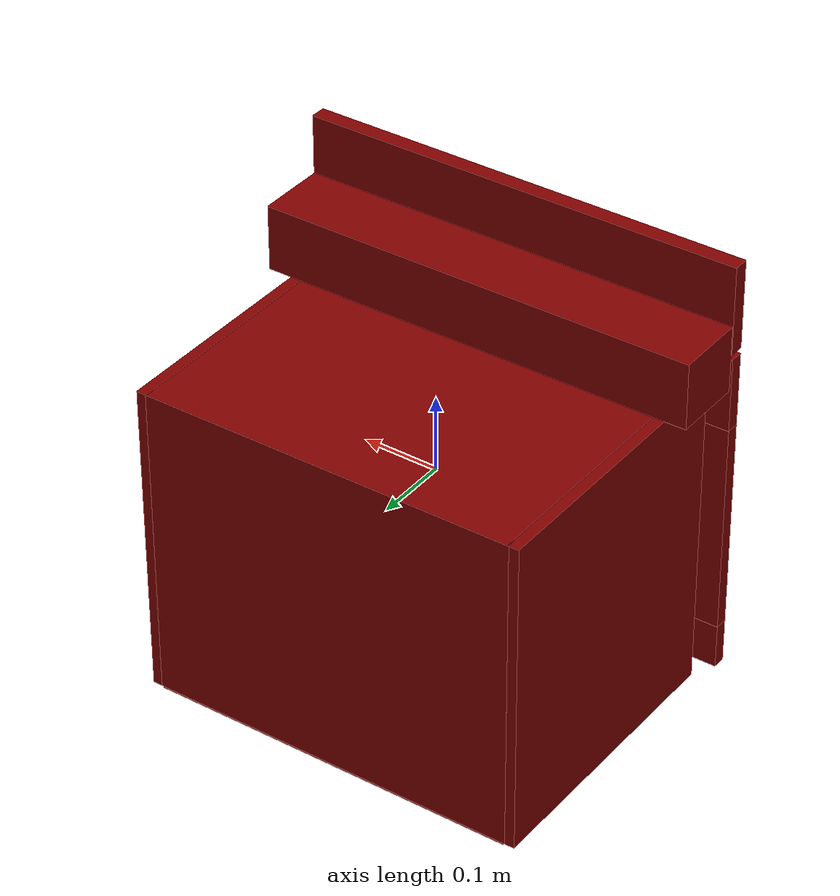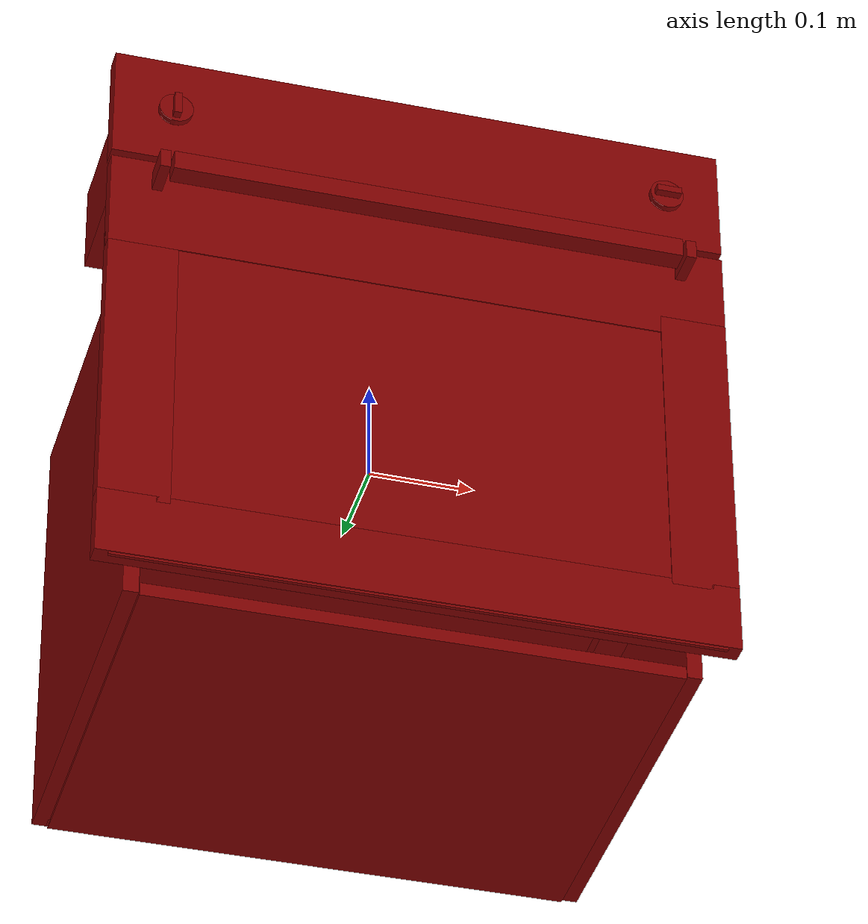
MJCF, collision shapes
<?xml version='1.0' encoding='UTF-8'?>
<mujoco model="model">
  <option timestep="0.002" gravity="0.0 0.0 -9.81"/>
  <compiler angle="radian"/>
  <asset>
    <mesh file="visuals/door.obj" name="door_vis"/>
    <mesh file="visuals/door_Clear.obj" name="door_Clear_vis"/>
    <mesh file="visuals/knob_temp.obj" name="knob_temp_vis"/>
    <mesh file="visuals/knob_time.obj" name="knob_time_vis"/>
    <mesh file="visuals/Body001.obj" name="Body001_vis"/>
    <mesh file="visuals/rack0.obj" name="rack0_vis"/>
    <mesh file="visuals/rack1.obj" name="rack1_vis"/>
    <texture file="visuals/T_BC001.png" name="Body001_material" type="2d"/>
    <material name="Body001_material" rgba="1 1 1 1.0" texture="Body001_material" shininess="2" specular="2"/>
    <texture file="visuals/T_BC001.png" name="door_material" type="2d"/>
    <material name="door_material" rgba="1 1 1 1.0" texture="door_material" shininess="2" specular="2"/>
    <texture file="visuals/T_BC001.png" name="door_Clear_material" type="2d"/>
    <material name="door_Clear_material" rgba="1 1 1 0.75" texture="door_Clear_material" shininess="0.5" specular="0.3103448502657381"/>
    <texture file="visuals/T_BC001.png" name="knob_temp_material" type="2d"/>
    <material name="knob_temp_material" rgba="1 1 1 1.0" texture="knob_temp_material" shininess="2" specular="2"/>
    <texture file="visuals/T_BC001.png" name="knob_time_material" type="2d"/>
    <material name="knob_time_material" rgba="1 1 1 1.0" texture="knob_time_material" shininess="2" specular="2"/>
    <texture file="visuals/T_BC001.png" name="rack0_material" type="2d"/>
    <material name="rack0_material" rgba="1 1 1 1.0" texture="rack0_material" shininess="10" specular="10"/>
    <texture file="visuals/T_BC001.png" name="rack1_material" type="2d"/>
    <material name="rack1_material" rgba="1 1 1 1.0" texture="rack1_material" shininess="10" specular="10"/>
  </asset>
  <default>
    <default class="visual">
      <geom conaffinity="0" contype="0" group="1" type="mesh"/>
    </default>
    <default class="collision">
      <geom group="0" rgba="0.5 0 0 0.5"/>
    </default>
    <default class="spawn">
      <geom group="0" rgba="1 1 1 0.5" contype="0" conaffinity="0"/>
      <site group="0" rgba="1 1 1 0.5"/>
    </default>
    <default class="region">
      <geom group="1" conaffinity="0" contype="0" rgba="0 1 0 0"/>
    </default>
  </default>
  <worldbody>
    <body>
      <body name="object">
        <geom mesh="Body001_vis" type="mesh" solimp="0.998 0.998 0.001" solref="0.001 1" friction="0.95 0.3 0.1" class="visual" material="Body001_material"/>
        <geom class="collision" type="box" pos="-0.2557266056537628 0.029321052134037018 -0.08142778277397156" size="0.007219076156616211 0.19212980568408966 0.2130533903837204" quat="1.0 0.0 0.0 0.0"/>
        <geom class="collision" type="box" pos="-6.509595550596714e-06 -0.1163046732544899 0.17706026136875153" size="0.2923739552497864 0.04649493098258972 0.043837908655405045" quat="1.0 0.0 0.0 0.0"/>
        <geom class="collision" type="box" pos="-2.9103830456733704e-11 -0.17321911454200745 0.24082490801811218" size="0.2932053804397583 0.010303128510713577 0.05880128592252731" quat="1.0 0.0 0.0 0.0"/>
        <geom class="collision" type="box" pos="0.2545583248138428 0.029321052134037018 -0.08142778277397156" size="0.007219076156616211 0.19212980568408966 0.2130533903837204" quat="1.0 0.0 0.0 0.0"/>
        <geom class="collision" type="box" pos="-0.0002587692579254508 0.2155100405216217 -0.08142778277397156" size="0.2494407445192337 0.005964251700788736 0.2130533903837204" quat="1.0 0.0 0.0 0.0"/>
        <geom class="collision" type="box" pos="-0.0005369999562390149 0.029321052134037018 -0.29008376598358154" size="0.24735546112060547 0.19212980568408966 0.006446285638958216" quat="1.0 0.0 0.0 0.0"/>
        <geom class="collision" type="box" pos="-0.0005370043218135834 0.029321052134037018 0.12525540590286255" size="0.24735546112060547 0.19212980568408966 0.006446285638958216" quat="1.0 0.0 0.0 0.0"/>
        <geom class="collision" type="box" pos="-0.23759418725967407 0.018307354301214218 0.011513151228427887" size="0.017211025580763817 0.1721840351819992 0.007144071627408266" quat="1.0 0.0 0.0 0.0"/>
        <geom class="collision" type="box" pos="0.2374390959739685 0.018307354301214218 0.011513151228427887" size="0.017211025580763817 0.1721840351819992 0.007144071627408266" quat="1.0 0.0 0.0 0.0"/>
        <geom class="collision" type="box" pos="0.2374390959739685 0.018307354301214218 -0.1430685669183731" size="0.017211025580763817 0.1721840351819992 0.007144071627408266" quat="1.0 0.0 0.0 0.0"/>
        <geom class="collision" type="box" pos="-0.23759418725967407 0.018307354301214218 -0.1430685669183731" size="0.017211025580763817 0.1721840351819992 0.007144071627408266" quat="1.0 0.0 0.0 0.0"/>
        <body name="door">
          <joint axis="1.0 0.0 0.0" pos="-1.990207238122821e-05 -0.18246791558340192 -0.27253665030002594" limited="true" name="door_joint" range="0.0 1.15" type="hinge" damping="1" frictionloss="1" armature="1" stiffness="2"/>
          <geom mesh="door_vis" type="mesh" solimp="0.998 0.998 0.001" solref="0.001 1" friction="0.95 0.3 0.1" class="visual" material="door_material"/>
          <geom class="collision" type="box" pos="-8.794665336608887e-05 -0.21169334650039673 0.14926202595233917" size="0.009907918982207775 0.009907918982207775 0.24201254546642303" quat="0.4999999701976776 0.5 0.5 0.5" name="door_handle_main"/>
          <geom class="collision" type="box" pos="-1.990207238122821e-05 -0.17772334814071655 -0.05382537841796875" size="0.23479610681533813 0.0013434074353426695 0.13202042877674103" quat="1.0 0.0 0.0 0.0"/>
          <geom class="collision" type="box" pos="-1.990207238122821e-05 -0.18086303770542145 -0.05382537841796875" size="0.2804950177669525 0.0016048778779804707 0.2187112718820572" quat="1.0 0.0 0.0 0.0" name="door_main"/>
          <geom class="collision" type="box" pos="-1.2456439435482025e-08 -0.17467117309570312 -0.23719945549964905" size="0.2932053804397583 0.008851069957017899 0.032889686077833176" quat="1.0 0.0 0.0 0.0"/>
          <geom class="collision" type="box" pos="-0.25014397501945496 -0.20337994396686554 0.14951643347740173" size="0.004824848845601082 0.017637573182582855 0.009651458822190762" quat="1.0 0.0 0.0 0.0"/>
          <geom class="collision" type="box" pos="0.250265508890152 -0.20337994396686554 0.14951643347740173" size="0.004824848845601082 0.017637573182582855 0.009651458822190762" quat="1.0 0.0 0.0 0.0"/>
          <geom class="collision" type="box" pos="-0.26039251685142517 -0.17467117309570312 -0.05768945813179016" size="0.032812878489494324 0.008851069957017899 0.15239968717098236" quat="1.0 0.0 0.0 0.0"/>
          <geom class="collision" type="box" pos="-1.2456439435482025e-08 -0.17467117309570312 0.12527859210968018" size="0.2932053804397583 0.008851069957017899 0.049431636929512024" quat="1.0 0.0 0.0 0.0"/>
          <geom class="collision" type="box" pos="0.2616102993488312 -0.17467117309570312 -0.05768945813179016" size="0.03159508854150772 0.008851069957017899 0.15239968717098236" quat="1.0 0.0 0.0 0.0"/>
          <body name="door_Clear">
            <geom mesh="door_Clear_vis" type="mesh" solimp="0.998 0.998 0.001" solref="0.001 1" friction="0.95 0.3 0.1" class="visual" material="door_Clear_material"/>
            <geom class="collision" type="box" pos="-1.990207238122821e-05 -0.17772334814071655 -0.05382537841796875" size="0.23479610681533813 0.0013434074353426695 0.13202042877674103" quat="1.0 0.0 0.0 0.0"/>
          </body>
        </body>
        <body name="knob_temp">
          <joint axis="0.0 1.0 0.0" pos="0.23979756236076355 -0.18983551859855652 0.2394142597913742" limited="true" name="knob_temp_joint" range="0.0 3.2288591161895095" type="hinge" damping="0.05" frictionloss="0.75" armature="1"/>
          <geom mesh="knob_temp_vis" type="mesh" solimp="0.998 0.998 0.001" solref="0.001 1" friction="0.95 0.3 0.1" class="visual" material="knob_temp_material"/>
          <geom class="collision" type="cylinder" pos="0.23979756236076355 -0.18718373775482178 0.2394142597913742" size="0.01608358323574066 0.0031409626826643944" quat="0.7071068286895752 0.7071067690849304 -1.5700924318127872e-16 -5.9269340452702814e-24" friction="100 0.5 0.01"/>
          <geom class="collision" type="box" pos="0.23979756236076355 -0.19267265498638153 0.2394142597913742" size="0.0034616661723703146 0.005540719721466303 0.011955962516367435" quat="0.70710688829422 -4.7503021960437763e-08 -0.7071066498756409 -4.750300774958305e-08" name="knob_temp_main" friction="100 0.5 0.01"/>
        </body>
        <body name="knob_time">
          <joint axis="0.0 1.0 0.0" pos="-0.23521986603736877 -0.18983551859855652 0.2394142597913742" limited="true" name="knob_time_joint" range="0.0 3.979350694547071" type="hinge" damping="0.05" frictionloss="0.75" armature="1"/>
          <geom mesh="knob_time_vis" type="mesh" solimp="0.998 0.998 0.001" solref="0.001 1" friction="0.95 0.3 0.1" class="visual" material="knob_time_material"/>
          <geom class="collision" type="cylinder" pos="-0.23521986603736877 -0.18718373775482178 0.2394142597913742" size="0.01608358323574066 0.0031409626826643944" quat="0.7071068286895752 0.7071067690849304 -1.5700924318127872e-16 -5.9269340452702814e-24" friction="100 0.5 0.01"/>
          <geom class="collision" type="box" pos="-0.23521986603736877 -0.19267265498638153 0.2394142597913742" size="0.0034616661723703146 0.005540719721466303 0.011955962516367435" quat="1.0 0.0 0.0 0.0" name="knob_time_main" friction="100 0.5 0.01"/>
        </body>
        <body name="rack0">
          <geom class="region" name="reg_rack0" type="box" pos="0.0012116879224777222 0.009413640946149826 -0.061838504392653704" size="0.22332866287231445 0.12217466703057289 0.06096544240042567"/>
          <joint axis="0.0 -1.0 0.0" pos="1.359748807772121e-06 0.009698130190372467 -0.13216164708137512" limited="true" name="rack0_joint" range="0.0 0.28" type="slide" damping="1" frictionloss="1" armature=".01" stiffness="0.05"/>
          <geom mesh="rack0_vis" type="mesh" solimp="0.998 0.998 0.001" solref="0.001 1" friction="0.95 0.3 0.1" class="visual" material="rack0_material"/>
          <geom class="collision" type="box" pos="-0.0005146542680449784 0.00798073597252369 -0.13109521567821503" size="0.23827512562274933 0.12442532181739807 0.0027252323925495148" quat="1.0 0.0 0.0 0.0"/>
        </body>
        <body name="rack1">
          <geom class="region" name="reg_rack1" type="box" pos="0.00263165682554245 0.031592801213264465 0.07335536368191242" size="0.21209401434659958 0.1561322191953659 0.040808986708521844"/>
          <joint axis="0.0 -1.0 0.0" pos="1.2777924212059588e-06 0.03167494758963585 0.022441715002059937" limited="true" name="rack1_joint" range="0.0 0.28" type="slide" damping="1" frictionloss="1" armature=".01" stiffness="0.05"/>
          <geom mesh="rack1_vis" type="mesh" solimp="0.998 0.998 0.001" solref="0.001 1" friction="0.95 0.3 0.1" class="visual" material="rack1_material"/>
          <geom class="collision" type="box" pos="-0.00010812358232215047 0.030966006219387054 0.02371634542942047" size="0.2379271686077118 0.1573076695203781 0.002953834133222699" quat="1.0 0.0 0.0 0.0"/>
        </body>
        <geom class="region" name="reg_int" type="box" pos="-0.0006804689764976501 0.020544879138469696 -0.08240944519639015" size="0.2433165962100029 0.1789700145125389 0.19650355896353722"/>
        <geom class="region" name="reg_main" type="box" pos="0.0 0.018976017832756042 0.0" size="0.2942053804397583 0.20349825716018677 0.3006262013912201"/>
      </body>
    </body>
  </worldbody>
  <actuator>
    <motor name="door_joint_actuator" joint="door_joint" gear="50"/>
    <motor name="knob_temp_joint_actuator" joint="knob_temp_joint" gear="50"/>
    <motor name="knob_time_joint_actuator" joint="knob_time_joint" gear="50"/>
    <motor name="rack0_joint_actuator" joint="rack0_joint" gear="50"/>
    <motor name="rack1_joint_actuator" joint="rack1_joint" gear="50"/>
  </actuator>
</mujoco>
